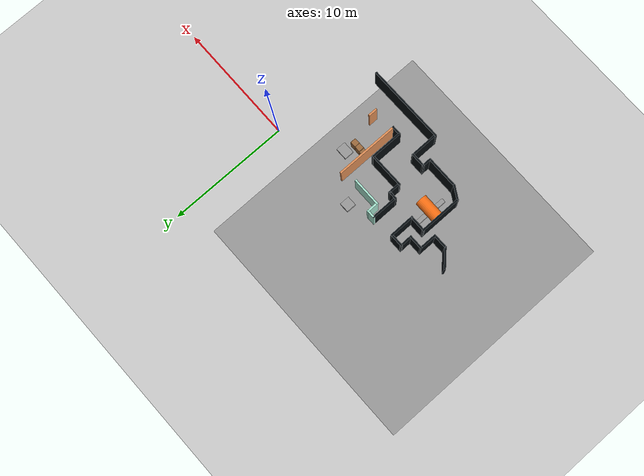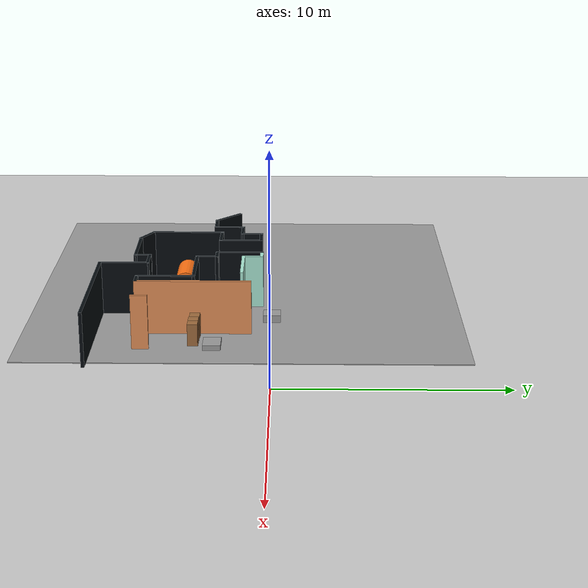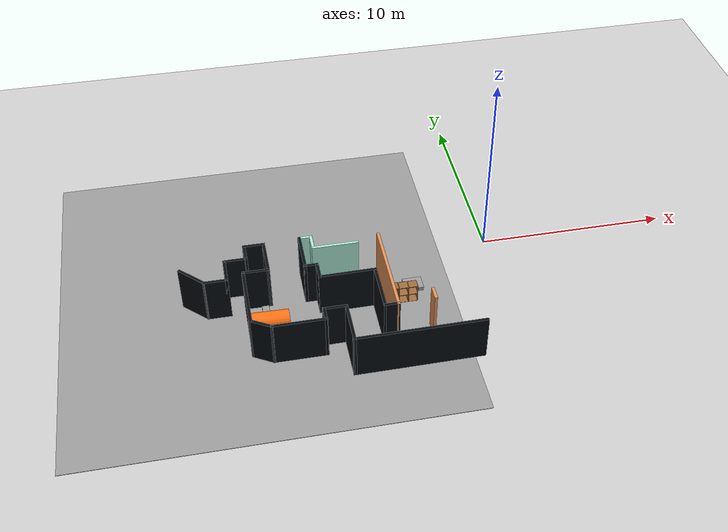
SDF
<sdf version="1.7">
 <world name="default">
  <model name="ground_plane">
   <static>1</static>
   <link name="link">
    <collision name="collision">
     <geometry><plane><normal>0 0 1</normal><size>100 100</size></plane></geometry>
     <surface><friction><ode><mu>100</mu><mu2>50</mu2></ode></friction></surface>
    </collision>
    <visual name="visual">
     <cast_shadows>0</cast_shadows>
     <geometry><plane><normal>0 0 1</normal><size>100 100</size></plane></geometry>
     <material>
      <script><uri>file://media/materials/scripts/gazebo.material</uri><name>Gazebo/Grey</name></script>
      <ambient>0.55 0.55 0.53 1</ambient>
      <diffuse>0.55 0.55 0.53 1</diffuse>
      <specular>0.08 0.08 0.08 1</specular>
      <emissive>0 0 0 1</emissive>
     </material>
    </visual>
   </link>
  </model>
  <model name="among_us_world">
   <pose>0.133216 -0.12311 0 0 -0 0</pose>
   <link name="Wall_145">
    <collision name="Wall_145_Collision">
     <geometry><box><size>5.25 0.15 2.5</size></box></geometry>
     <pose>0 0 1.25 0 -0 0</pose>
    </collision>
    <visual name="Wall_145_Visual">
     <pose>0 0 1.25 0 -0 0</pose>
     <geometry><box><size>5.25 0.15 2.5</size></box></geometry>
     <material>
      <script><uri>file://media/materials/scripts/gazebo.material</uri><name>Gazebo/Motorway</name></script>
      <ambient>0.88 0.56 0.34 1</ambient>
      <diffuse>0.88 0.56 0.34 1</diffuse>
      <specular>0.08 0.08 0.08 1</specular>
      <emissive>0 0 0 1</emissive>
     </material>
     <meta><layer>0</layer></meta>
    </visual>
    <pose>-6.21277 -3.45528 0 0 -0 1.5708</pose>
   </link>
   <link name="Wall_154">
    <collision name="Wall_154_Collision">
     <geometry><box><size>0.75 0.15 2.5</size></box></geometry>
     <pose>0 0 1.25 0 -0 0</pose>
    </collision>
    <visual name="Wall_154_Visual">
     <pose>0 0 1.25 0 -0 0</pose>
     <geometry><box><size>0.75 0.15 2.5</size></box></geometry>
     <material>
      <script><uri>file://media/materials/scripts/gazebo.material</uri><name>Gazebo/Motorway</name></script>
      <ambient>0.88 0.56 0.34 1</ambient>
      <diffuse>0.88 0.56 0.34 1</diffuse>
      <specular>0.08 0.08 0.08 1</specular>
      <emissive>0 0 0 1</emissive>
     </material>
     <meta><layer>0</layer></meta>
    </visual>
    <pose>-4.35577 -5.65528 0 0 -0 -1.5708</pose>
   </link>
   <link name="Wall_160">
    <collision name="Wall_160_Collision">
     <geometry><box><size>0.797757 0.15 2.5</size></box></geometry>
     <pose>0 0 1.25 0 -0 0</pose>
    </collision>
    <visual name="Wall_160_Visual">
     <pose>0 0 1.25 0 -0 0</pose>
     <geometry><box><size>0.797757 0.15 2.5</size></box></geometry>
     <material>
      <script><uri>file://media/materials/scripts/gazebo.material</uri><name>Gazebo/Motorway</name></script>
      <ambient>0.025 0.045 0.06 1</ambient>
      <diffuse>0.025 0.045 0.06 1</diffuse>
      <specular>0.08 0.08 0.08 1</specular>
      <emissive>0 0 0 1</emissive>
     </material>
     <meta><layer>0</layer></meta>
    </visual>
    <pose>-6.53682 -6.00509 0 0 -0 3.14101</pose>
   </link>
   <link name="Wall_161">
    <collision name="Wall_161_Collision">
     <geometry><box><size>2.70224 0.15 2.5</size></box></geometry>
     <pose>0 0 1.25 0 -0 0</pose>
    </collision>
    <visual name="Wall_161_Visual">
     <pose>0 0 1.25 0 -0 0</pose>
     <geometry><box><size>2.70224 0.15 2.5</size></box></geometry>
     <material>
      <script><uri>file://media/materials/scripts/gazebo.material</uri><name>Gazebo/Motorway</name></script>
      <ambient>0.025 0.045 0.06 1</ambient>
      <diffuse>0.025 0.045 0.06 1</diffuse>
      <specular>0.08 0.08 0.08 1</specular>
      <emissive>0 0 0 1</emissive>
     </material>
     <meta><layer>0</layer></meta>
    </visual>
    <pose>-6.87644 -4.72879 0 0 -0 1.5708</pose>
   </link>
   <link name="Wall_162">
    <collision name="Wall_162_Collision">
     <geometry><box><size>2.95229 0.15 2.5</size></box></geometry>
     <pose>0 0 1.25 0 -0 0</pose>
    </collision>
    <visual name="Wall_162_Visual">
     <pose>0 0 1.25 0 -0 0</pose>
     <geometry><box><size>2.95229 0.15 2.5</size></box></geometry>
     <material>
      <script><uri>file://media/materials/scripts/gazebo.material</uri><name>Gazebo/Motorway</name></script>
      <ambient>0.025 0.045 0.06 1</ambient>
      <diffuse>0.025 0.045 0.06 1</diffuse>
      <specular>0.08 0.08 0.08 1</specular>
      <emissive>0 0 0 1</emissive>
     </material>
     <meta><layer>0</layer></meta>
    </visual>
    <pose>-8.262 -3.46044 0 0 -0 -3.13604</pose>
   </link>
   <link name="Wall_163">
    <collision name="Wall_163_Collision">
     <geometry><box><size>1.04776 0.15 2.5</size></box></geometry>
     <pose>0 0 1.25 0 -0 0</pose>
    </collision>
    <visual name="Wall_163_Visual">
     <pose>0 0 1.25 0 -0 0</pose>
     <geometry><box><size>1.04776 0.15 2.5</size></box></geometry>
     <material>
      <script><uri>file://media/materials/scripts/gazebo.material</uri><name>Gazebo/Motorway</name></script>
      <ambient>0.025 0.045 0.06 1</ambient>
      <diffuse>0.025 0.045 0.06 1</diffuse>
      <specular>0.08 0.08 0.08 1</specular>
      <emissive>0 0 0 1</emissive>
     </material>
     <meta><layer>0</layer></meta>
    </visual>
    <pose>-9.66312 -3.00378 0 0 -0 1.5708</pose>
   </link>
   <link name="Wall_164">
    <collision name="Wall_164_Collision">
     <geometry><box><size>0.75 0.15 2.5</size></box></geometry>
     <pose>0 0 1.25 0 -0 0</pose>
    </collision>
    <visual name="Wall_164_Visual">
     <pose>0 0 1.25 0 -0 0</pose>
     <geometry><box><size>0.75 0.15 2.5</size></box></geometry>
     <material>
      <script><uri>file://media/materials/scripts/gazebo.material</uri><name>Gazebo/Motorway</name></script>
      <ambient>0.025 0.045 0.06 1</ambient>
      <diffuse>0.025 0.045 0.06 1</diffuse>
      <specular>0.08 0.08 0.08 1</specular>
      <emissive>0 0 0 1</emissive>
     </material>
     <meta><layer>0</layer></meta>
    </visual>
    <pose>-9.96312 -2.55491 0 0 -0 3.14159</pose>
   </link>
   <link name="Wall_165">
    <collision name="Wall_165_Collision">
     <geometry><box><size>2.25 0.15 2.5</size></box></geometry>
     <pose>0 0 1.25 0 -0 0</pose>
    </collision>
    <visual name="Wall_165_Visual">
     <pose>0 0 1.25 0 -0 0</pose>
     <geometry><box><size>2.25 0.15 2.5</size></box></geometry>
     <material>
      <script><uri>file://media/materials/scripts/gazebo.material</uri><name>Gazebo/Motorway</name></script>
      <ambient>0.025 0.045 0.06 1</ambient>
      <diffuse>0.025 0.045 0.06 1</diffuse>
      <specular>0.08 0.08 0.08 1</specular>
      <emissive>0 0 0 1</emissive>
     </material>
     <meta><layer>0</layer></meta>
    </visual>
    <pose>-10.2631 -1.50491 0 0 -0 1.5708</pose>
   </link>
   <link name="Wall_166">
    <collision name="Wall_166_Collision">
     <geometry><box><size>0.75 0.15 2.5</size></box></geometry>
     <pose>0 0 1.25 0 -0 0</pose>
    </collision>
    <visual name="Wall_166_Visual">
     <pose>0 0 1.25 0 -0 0</pose>
     <geometry><box><size>0.75 0.15 2.5</size></box></geometry>
     <material>
      <script><uri>file://media/materials/scripts/gazebo.material</uri><name>Gazebo/Motorway</name></script>
      <ambient>0.66 0.90 0.82 1</ambient>
      <diffuse>0.66 0.90 0.82 1</diffuse>
      <specular>0.08 0.08 0.08 1</specular>
      <emissive>0 0 0 1</emissive>
     </material>
     <meta><layer>0</layer></meta>
    </visual>
    <pose>-9.96312 -0.454906 0 0 -0 0</pose>
   </link>
   <link name="Wall_167">
    <collision name="Wall_167_Collision">
     <geometry><box><size>1 0.15 2.5</size></box></geometry>
     <pose>0 0 1.25 0 -0 0</pose>
    </collision>
    <visual name="Wall_167_Visual">
     <pose>0 0 1.25 0 -0 0</pose>
     <geometry><box><size>1 0.15 2.5</size></box></geometry>
     <material>
      <script><uri>file://media/materials/scripts/gazebo.material</uri><name>Gazebo/Motorway</name></script>
      <ambient>0.66 0.90 0.82 1</ambient>
      <diffuse>0.66 0.90 0.82 1</diffuse>
      <specular>0.08 0.08 0.08 1</specular>
      <emissive>0 0 0 1</emissive>
     </material>
     <meta><layer>0</layer></meta>
    </visual>
    <pose>-9.66312 -0.879906 0 0 -0 -1.5708</pose>
   </link>
   <link name="Wall_168">
    <collision name="Wall_168_Collision">
     <geometry><box><size>2.40666 0.15 2.5</size></box></geometry>
     <pose>0 0 1.25 0 -0 0</pose>
    </collision>
    <visual name="Wall_168_Visual">
     <pose>0 0 1.25 0 -0 0</pose>
     <geometry><box><size>2.40666 0.15 2.5</size></box></geometry>
     <material>
      <script><uri>file://media/materials/scripts/gazebo.material</uri><name>Gazebo/Motorway</name></script>
      <ambient>0.66 0.90 0.82 1</ambient>
      <diffuse>0.66 0.90 0.82 1</diffuse>
      <specular>0.08 0.08 0.08 1</specular>
      <emissive>0 0 0 1</emissive>
     </material>
     <meta><layer>0</layer></meta>
    </visual>
    <pose>-8.53479 -1.30491 0 0 -0 0</pose>
   </link>
   <link name="Wall_47">
    <collision name="Wall_47_Collision">
     <geometry><box><size>1.7065 0.15 2.5</size></box></geometry>
     <pose>0 0 1.25 0 -0 0</pose>
    </collision>
    <visual name="Wall_47_Visual">
     <pose>0 0 1.25 0 -0 0</pose>
     <geometry><box><size>1.7065 0.15 2.5</size></box></geometry>
     <material>
      <script><uri>file://media/materials/scripts/gazebo.material</uri><name>Gazebo/Motorway</name></script>
      <ambient>0.025 0.045 0.06 1</ambient>
      <diffuse>0.025 0.045 0.06 1</diffuse>
      <specular>0.08 0.08 0.08 1</specular>
      <emissive>0 0 0 1</emissive>
     </material>
     <meta><layer>0</layer></meta>
    </visual>
    <pose>-15.8858 -2.28678 0 0 -0 -0.771315</pose>
   </link>
   <link name="Wall_48">
    <collision name="Wall_48_Collision">
     <geometry><box><size>1.266 0.15 2.5</size></box></geometry>
     <pose>0 0 1.25 0 -0 0</pose>
    </collision>
    <visual name="Wall_48_Visual">
     <pose>0 0 1.25 0 -0 0</pose>
     <geometry><box><size>1.266 0.15 2.5</size></box></geometry>
     <material>
      <script><uri>file://media/materials/scripts/gazebo.material</uri><name>Gazebo/Motorway</name></script>
      <ambient>0.025 0.045 0.06 1</ambient>
      <diffuse>0.025 0.045 0.06 1</diffuse>
      <specular>0.08 0.08 0.08 1</specular>
      <emissive>0 0 0 1</emissive>
     </material>
     <meta><layer>0</layer></meta>
    </visual>
    <pose>-14.7698 -2.82928 0 0 -0 0</pose>
   </link>
   <link name="Wall_49">
    <collision name="Wall_49_Collision">
     <geometry><box><size>1.5 0.15 2.5</size></box></geometry>
     <pose>0 0 1.25 0 -0 0</pose>
    </collision>
    <visual name="Wall_49_Visual">
     <pose>0 0 1.25 0 -0 0</pose>
     <geometry><box><size>1.5 0.15 2.5</size></box></geometry>
     <material>
      <script><uri>file://media/materials/scripts/gazebo.material</uri><name>Gazebo/Motorway</name></script>
      <ambient>0.025 0.045 0.06 1</ambient>
      <diffuse>0.025 0.045 0.06 1</diffuse>
      <specular>0.08 0.08 0.08 1</specular>
      <emissive>0 0 0 1</emissive>
     </material>
     <meta><layer>0</layer></meta>
    </visual>
    <pose>-14.2118 -2.15428 0 0 -0 1.5708</pose>
   </link>
   <link name="Wall_50">
    <collision name="Wall_50_Collision">
     <geometry><box><size>1.25 0.15 2.5</size></box></geometry>
     <pose>0 0 1.25 0 -0 0</pose>
    </collision>
    <visual name="Wall_50_Visual">
     <pose>0 0 1.25 0 -0 0</pose>
     <geometry><box><size>1.25 0.15 2.5</size></box></geometry>
     <material>
      <script><uri>file://media/materials/scripts/gazebo.material</uri><name>Gazebo/Motorway</name></script>
      <ambient>0.025 0.045 0.06 1</ambient>
      <diffuse>0.025 0.045 0.06 1</diffuse>
      <specular>0.08 0.08 0.08 1</specular>
      <emissive>0 0 0 1</emissive>
     </material>
     <meta><layer>0</layer></meta>
    </visual>
    <pose>-13.6618 -1.47928 0 0 -0 0</pose>
   </link>
   <link name="Wall_51">
    <collision name="Wall_51_Collision">
     <geometry><box><size>1.07621 0.15 2.5</size></box></geometry>
     <pose>0 0 1.25 0 -0 0</pose>
    </collision>
    <visual name="Wall_51_Visual">
     <pose>0 0 1.25 0 -0 0</pose>
     <geometry><box><size>1.07621 0.15 2.5</size></box></geometry>
     <material>
      <script><uri>file://media/materials/scripts/gazebo.material</uri><name>Gazebo/Motorway</name></script>
      <ambient>0.025 0.045 0.06 1</ambient>
      <diffuse>0.025 0.045 0.06 1</diffuse>
      <specular>0.08 0.08 0.08 1</specular>
      <emissive>0 0 0 1</emissive>
     </material>
     <meta><layer>0</layer></meta>
    </visual>
    <pose>-13.1188 -1.01578 0 0 -0 1.5859</pose>
   </link>
   <link name="Wall_52">
    <collision name="Wall_52_Collision">
     <geometry><box><size>1.1411 0.15 2.5</size></box></geometry>
     <pose>0 0 1.25 0 -0 0</pose>
    </collision>
    <visual name="Wall_52_Visual">
     <pose>0 0 1.25 0 -0 0</pose>
     <geometry><box><size>1.1411 0.15 2.5</size></box></geometry>
     <material>
      <script><uri>file://media/materials/scripts/gazebo.material</uri><name>Gazebo/Motorway</name></script>
      <ambient>0.025 0.045 0.06 1</ambient>
      <diffuse>0.025 0.045 0.06 1</diffuse>
      <specular>0.08 0.08 0.08 1</specular>
      <emissive>0 0 0 1</emissive>
     </material>
     <meta><layer>0</layer></meta>
    </visual>
    <pose>-12.6302 -0.553561 0 0 -0 -0.00258</pose>
   </link>
   <link name="Wall_53">
    <collision name="Wall_53_Collision">
     <geometry><box><size>2.08956 0.15 2.5</size></box></geometry>
     <pose>0 0 1.25 0 -0 0</pose>
    </collision>
    <visual name="Wall_53_Visual">
     <pose>0 0 1.25 0 -0 0</pose>
     <geometry><box><size>2.08956 0.15 2.5</size></box></geometry>
     <material>
      <script><uri>file://media/materials/scripts/gazebo.material</uri><name>Gazebo/Motorway</name></script>
      <ambient>0.025 0.045 0.06 1</ambient>
      <diffuse>0.025 0.045 0.06 1</diffuse>
      <specular>0.08 0.08 0.08 1</specular>
      <emissive>0 0 0 1</emissive>
     </material>
     <meta><layer>0</layer></meta>
    </visual>
    <pose>-12.1122 -1.5246 0 0 -0 -1.56365</pose>
   </link>
   <link name="Wall_54">
    <collision name="Wall_54_Collision">
     <geometry><box><size>1.3912 0.15 2.5</size></box></geometry>
     <pose>0 0 1.25 0 -0 0</pose>
    </collision>
    <visual name="Wall_54_Visual">
     <pose>0 0 1.25 0 -0 0</pose>
     <geometry><box><size>1.3912 0.15 2.5</size></box></geometry>
     <material>
      <script><uri>file://media/materials/scripts/gazebo.material</uri><name>Gazebo/Motorway</name></script>
      <ambient>0.025 0.045 0.06 1</ambient>
      <diffuse>0.025 0.045 0.06 1</diffuse>
      <specular>0.08 0.08 0.08 1</specular>
      <emissive>0 0 0 1</emissive>
     </material>
     <meta><layer>0</layer></meta>
    </visual>
    <pose>-12.7414 -2.48657 0 0 -0 3.12906</pose>
   </link>
   <link name="Wall_55">
    <collision name="Wall_55_Collision">
     <geometry><box><size>3.5 0.15 2.5</size></box></geometry>
     <pose>0 0 1.25 0 -0 0</pose>
    </collision>
    <visual name="Wall_55_Visual">
     <pose>0 0 1.25 0 -0 0</pose>
     <geometry><box><size>3.5 0.15 2.5</size></box></geometry>
     <material>
      <script><uri>file://media/materials/scripts/gazebo.material</uri><name>Gazebo/Motorway</name></script>
      <ambient>0.025 0.045 0.06 1</ambient>
      <diffuse>0.025 0.045 0.06 1</diffuse>
      <specular>0.08 0.08 0.08 1</specular>
      <emissive>0 0 0 1</emissive>
     </material>
     <meta><layer>0</layer></meta>
    </visual>
    <pose>-13.3619 -4.15379 0 0 -0 -1.5708</pose>
   </link>
   <link name="Wall_56">
    <collision name="Wall_56_Collision">
     <geometry><box><size>1.25 0.15 2.5</size></box></geometry>
     <pose>0 0 1.25 0 -0 0</pose>
    </collision>
    <visual name="Wall_56_Visual">
     <pose>0 0 1.25 0 -0 0</pose>
     <geometry><box><size>1.25 0.15 2.5</size></box></geometry>
     <material>
      <script><uri>file://media/materials/scripts/gazebo.material</uri><name>Gazebo/Motorway</name></script>
      <ambient>0.025 0.045 0.06 1</ambient>
      <diffuse>0.025 0.045 0.06 1</diffuse>
      <specular>0.08 0.08 0.08 1</specular>
      <emissive>0 0 0 1</emissive>
     </material>
     <meta><layer>0</layer></meta>
    </visual>
    <pose>-12.8856 -6.10379 0 0 -0 -0.523599</pose>
   </link>
   <link name="Wall_57">
    <collision name="Wall_57_Collision">
     <geometry><box><size>2.75 0.15 2.5</size></box></geometry>
     <pose>0 0 1.25 0 -0 0</pose>
    </collision>
    <visual name="Wall_57_Visual">
     <pose>0 0 1.25 0 -0 0</pose>
     <geometry><box><size>2.75 0.15 2.5</size></box></geometry>
     <material>
      <script><uri>file://media/materials/scripts/gazebo.material</uri><name>Gazebo/Motorway</name></script>
      <ambient>0.025 0.045 0.06 1</ambient>
      <diffuse>0.025 0.045 0.06 1</diffuse>
      <specular>0.08 0.08 0.08 1</specular>
      <emissive>0 0 0 1</emissive>
     </material>
     <meta><layer>0</layer></meta>
    </visual>
    <pose>-11.1093 -6.37879 0 0 -0 0</pose>
   </link>
   <link name="Wall_58">
    <collision name="Wall_58_Collision">
     <geometry><box><size>0.828826 0.15 2.5</size></box></geometry>
     <pose>0 0 1.25 0 -0 0</pose>
    </collision>
    <visual name="Wall_58_Visual">
     <pose>0 0 1.25 0 -0 0</pose>
     <geometry><box><size>0.828826 0.15 2.5</size></box></geometry>
     <material>
      <script><uri>file://media/materials/scripts/gazebo.material</uri><name>Gazebo/Motorway</name></script>
      <ambient>0.025 0.045 0.06 1</ambient>
      <diffuse>0.025 0.045 0.06 1</diffuse>
      <specular>0.08 0.08 0.08 1</specular>
      <emissive>0 0 0 1</emissive>
     </material>
     <meta><layer>0</layer></meta>
    </visual>
    <pose>-9.81221 -6.03984 0 0 -0 1.57942</pose>
   </link>
   <link name="Wall_59">
    <collision name="Wall_59_Collision">
     <geometry><box><size>1.25 0.15 2.5</size></box></geometry>
     <pose>0 0 1.25 0 -0 0</pose>
    </collision>
    <visual name="Wall_59_Visual">
     <pose>0 0 1.25 0 -0 0</pose>
     <geometry><box><size>1.25 0.15 2.5</size></box></geometry>
     <material>
      <script><uri>file://media/materials/scripts/gazebo.material</uri><name>Gazebo/Motorway</name></script>
      <ambient>0.025 0.045 0.06 1</ambient>
      <diffuse>0.025 0.045 0.06 1</diffuse>
      <specular>0.08 0.08 0.08 1</specular>
      <emissive>0 0 0 1</emissive>
     </material>
     <meta><layer>0</layer></meta>
    </visual>
    <pose>-9.27098 -5.70088 0 0 -0 0</pose>
   </link>
   <link name="Wall_60">
    <collision name="Wall_60_Collision">
     <geometry><box><size>2.3556 0.15 2.5</size></box></geometry>
     <pose>0 0 1.25 0 -0 0</pose>
    </collision>
    <visual name="Wall_60_Visual">
     <pose>0 0 1.25 0 -0 0</pose>
     <geometry><box><size>2.3556 0.15 2.5</size></box></geometry>
     <material>
      <script><uri>file://media/materials/scripts/gazebo.material</uri><name>Gazebo/Motorway</name></script>
      <ambient>0.025 0.045 0.06 1</ambient>
      <diffuse>0.025 0.045 0.06 1</diffuse>
      <specular>0.08 0.08 0.08 1</specular>
      <emissive>0 0 0 1</emissive>
     </material>
     <meta><layer>0</layer></meta>
    </visual>
    <pose>-8.71756 -6.80367 0 0 -0 -1.56769</pose>
   </link>
   <link name="Wall_61">
    <collision name="Wall_61_Collision">
     <geometry><box><size>6.57551 0.15 2.5</size></box></geometry>
     <pose>0 0 1.25 0 -0 0</pose>
    </collision>
    <visual name="Wall_61_Visual">
     <pose>0 0 1.25 0 -0 0</pose>
     <geometry><box><size>6.57551 0.15 2.5</size></box></geometry>
     <material>
      <script><uri>file://media/materials/scripts/gazebo.material</uri><name>Gazebo/Motorway</name></script>
      <ambient>0.025 0.045 0.06 1</ambient>
      <diffuse>0.025 0.045 0.06 1</diffuse>
      <specular>0.08 0.08 0.08 1</specular>
      <emissive>0 0 0 1</emissive>
     </material>
     <meta><layer>0</layer></meta>
    </visual>
    <pose>-5.51319 -7.89091 0 0 -0 0.004842</pose>
   </link>
   <static>1</static>
  </model>
  <model name="cabinet_clone">
   <static>1</static>
   <link name="cabinet_bottom_plate">
    <inertial>
     <pose>0 0 -1 0 -0 0</pose>
     <inertia><ixx>2.05</ixx><ixy>0</ixy><ixz>0</ixz><iyy>2.05</iyy><iyz>0</iyz><izz>2.05</izz></inertia>
     <mass>25</mass>
    </inertial>
    <collision name="cabinet_bottom_plate_geom">
     <pose>0 0 0.01 0 -0 0</pose>
     <geometry><box><size>0.45 0.45 0.02</size></box></geometry>
    </collision>
    <visual name="cabinet_bottom_plate_geom_visual">
     <pose>0 0 0.01 0 -0 0</pose>
     <geometry><box><size>0.45 0.45 0.02</size></box></geometry>
     <material>
      <script><uri>file://media/materials/scripts/gazebo.material</uri><name>Gazebo/Grey</name></script>
      <ambient>0.62 0.42 0.24 1</ambient>
      <diffuse>0.62 0.42 0.24 1</diffuse>
      <specular>0.08 0.08 0.08 1</specular>
      <emissive>0 0 0 1</emissive>
     </material>
    </visual>
    <collision name="cabinet_bottom_plate_geom_cabinet_back_plate">
     <pose>0.235 0 0.51 0 -0 0</pose>
     <geometry><box><size>0.02 0.45 1.02</size></box></geometry>
    </collision>
    <visual name="cabinet_bottom_plate_geom_cabinet_back_plate_visual">
     <pose>0.235 0 0.51 0 -0 0</pose>
     <geometry><box><size>0.02 0.45 1.02</size></box></geometry>
     <material>
      <script><uri>file://media/materials/scripts/gazebo.material</uri><name>Gazebo/Grey</name></script>
      <ambient>0.62 0.42 0.24 1</ambient>
      <diffuse>0.62 0.42 0.24 1</diffuse>
      <specular>0.08 0.08 0.08 1</specular>
      <emissive>0 0 0 1</emissive>
     </material>
    </visual>
    <collision name="cabinet_bottom_plate_geom_cabinet_left_plate">
     <pose>0 0.235 0.51 0 -0 0</pose>
     <geometry><box><size>0.45 0.02 1.02</size></box></geometry>
    </collision>
    <visual name="cabinet_bottom_plate_geom_cabinet_left_plate_visual">
     <pose>0 0.235 0.51 0 -0 0</pose>
     <geometry><box><size>0.45 0.02 1.02</size></box></geometry>
     <material>
      <script><uri>file://media/materials/scripts/gazebo.material</uri><name>Gazebo/Grey</name></script>
      <ambient>0.62 0.42 0.24 1</ambient>
      <diffuse>0.62 0.42 0.24 1</diffuse>
      <specular>0.08 0.08 0.08 1</specular>
      <emissive>0 0 0 1</emissive>
     </material>
    </visual>
    <collision name="cabinet_bottom_plate_geom_cabinet_middle_plate">
     <pose>0 0 0.51 0 -0 0</pose>
     <geometry><box><size>0.45 0.45 0.02</size></box></geometry>
    </collision>
    <visual name="cabinet_bottom_plate_geom_cabinet_middle_plate_visual">
     <pose>0 0 0.51 0 -0 0</pose>
     <geometry><box><size>0.45 0.45 0.02</size></box></geometry>
     <material>
      <script><uri>file://media/materials/scripts/gazebo.material</uri><name>Gazebo/Grey</name></script>
      <ambient>0.62 0.42 0.24 1</ambient>
      <diffuse>0.62 0.42 0.24 1</diffuse>
      <specular>0.08 0.08 0.08 1</specular>
      <emissive>0 0 0 1</emissive>
     </material>
    </visual>
    <collision name="cabinet_bottom_plate_geom_cabinet_right_plate">
     <pose>0 -0.235 0.51 0 -0 0</pose>
     <geometry><box><size>0.45 0.02 1.02</size></box></geometry>
    </collision>
    <visual name="cabinet_bottom_plate_geom_cabinet_right_plate_visual">
     <pose>0 -0.235 0.51 0 -0 0</pose>
     <geometry><box><size>0.45 0.02 1.02</size></box></geometry>
     <material>
      <script><uri>file://media/materials/scripts/gazebo.material</uri><name>Gazebo/Grey</name></script>
      <ambient>0.62 0.42 0.24 1</ambient>
      <diffuse>0.62 0.42 0.24 1</diffuse>
      <specular>0.08 0.08 0.08 1</specular>
      <emissive>0 0 0 1</emissive>
     </material>
    </visual>
    <collision name="cabinet_bottom_plate_geom_cabinet_top_plate">
     <pose>0 0 1.01 0 -0 0</pose>
     <geometry><box><size>0.45 0.45 0.02</size></box></geometry>
    </collision>
    <visual name="cabinet_bottom_plate_geom_cabinet_top_plate_visual">
     <pose>0 0 1.01 0 -0 0</pose>
     <geometry><box><size>0.45 0.45 0.02</size></box></geometry>
     <material>
      <script><uri>file://media/materials/scripts/gazebo.material</uri><name>Gazebo/Grey</name></script>
      <ambient>0.62 0.42 0.24 1</ambient>
      <diffuse>0.62 0.42 0.24 1</diffuse>
      <specular>0.08 0.08 0.08 1</specular>
      <emissive>0 0 0 1</emissive>
     </material>
    </visual>
   </link>
   <pose>-5.25916 -3.50994 0 0 -0 1.57</pose>
  </model>
  <model name="cabinet_clone_0">
   <static>1</static>
   <link name="cabinet_bottom_plate">
    <inertial>
     <pose>0 0 -1 0 -0 0</pose>
     <inertia><ixx>2.05</ixx><ixy>0</ixy><ixz>0</ixz><iyy>2.05</iyy><iyz>0</iyz><izz>2.05</izz></inertia>
     <mass>25</mass>
    </inertial>
    <collision name="cabinet_bottom_plate_geom">
     <pose>0 0 0.01 0 -0 0</pose>
     <geometry><box><size>0.45 0.45 0.02</size></box></geometry>
    </collision>
    <visual name="cabinet_bottom_plate_geom_visual">
     <pose>0 0 0.01 0 -0 0</pose>
     <geometry><box><size>0.45 0.45 0.02</size></box></geometry>
     <material>
      <script><uri>file://media/materials/scripts/gazebo.material</uri><name>Gazebo/Grey</name></script>
      <ambient>0.62 0.42 0.24 1</ambient>
      <diffuse>0.62 0.42 0.24 1</diffuse>
      <specular>0.08 0.08 0.08 1</specular>
      <emissive>0 0 0 1</emissive>
     </material>
    </visual>
    <collision name="cabinet_bottom_plate_geom_cabinet_back_plate">
     <pose>0.235 0 0.51 0 -0 0</pose>
     <geometry><box><size>0.02 0.45 1.02</size></box></geometry>
    </collision>
    <visual name="cabinet_bottom_plate_geom_cabinet_back_plate_visual">
     <pose>0.235 0 0.51 0 -0 0</pose>
     <geometry><box><size>0.02 0.45 1.02</size></box></geometry>
     <material>
      <script><uri>file://media/materials/scripts/gazebo.material</uri><name>Gazebo/Grey</name></script>
      <ambient>0.62 0.42 0.24 1</ambient>
      <diffuse>0.62 0.42 0.24 1</diffuse>
      <specular>0.08 0.08 0.08 1</specular>
      <emissive>0 0 0 1</emissive>
     </material>
    </visual>
    <collision name="cabinet_bottom_plate_geom_cabinet_left_plate">
     <pose>0 0.235 0.51 0 -0 0</pose>
     <geometry><box><size>0.45 0.02 1.02</size></box></geometry>
    </collision>
    <visual name="cabinet_bottom_plate_geom_cabinet_left_plate_visual">
     <pose>0 0.235 0.51 0 -0 0</pose>
     <geometry><box><size>0.45 0.02 1.02</size></box></geometry>
     <material>
      <script><uri>file://media/materials/scripts/gazebo.material</uri><name>Gazebo/Grey</name></script>
      <ambient>0.62 0.42 0.24 1</ambient>
      <diffuse>0.62 0.42 0.24 1</diffuse>
      <specular>0.08 0.08 0.08 1</specular>
      <emissive>0 0 0 1</emissive>
     </material>
    </visual>
    <collision name="cabinet_bottom_plate_geom_cabinet_middle_plate">
     <pose>0 0 0.51 0 -0 0</pose>
     <geometry><box><size>0.45 0.45 0.02</size></box></geometry>
    </collision>
    <visual name="cabinet_bottom_plate_geom_cabinet_middle_plate_visual">
     <pose>0 0 0.51 0 -0 0</pose>
     <geometry><box><size>0.45 0.45 0.02</size></box></geometry>
     <material>
      <script><uri>file://media/materials/scripts/gazebo.material</uri><name>Gazebo/Grey</name></script>
      <ambient>0.62 0.42 0.24 1</ambient>
      <diffuse>0.62 0.42 0.24 1</diffuse>
      <specular>0.08 0.08 0.08 1</specular>
      <emissive>0 0 0 1</emissive>
     </material>
    </visual>
    <collision name="cabinet_bottom_plate_geom_cabinet_right_plate">
     <pose>0 -0.235 0.51 0 -0 0</pose>
     <geometry><box><size>0.45 0.02 1.02</size></box></geometry>
    </collision>
    <visual name="cabinet_bottom_plate_geom_cabinet_right_plate_visual">
     <pose>0 -0.235 0.51 0 -0 0</pose>
     <geometry><box><size>0.45 0.02 1.02</size></box></geometry>
     <material>
      <script><uri>file://media/materials/scripts/gazebo.material</uri><name>Gazebo/Grey</name></script>
      <ambient>0.62 0.42 0.24 1</ambient>
      <diffuse>0.62 0.42 0.24 1</diffuse>
      <specular>0.08 0.08 0.08 1</specular>
      <emissive>0 0 0 1</emissive>
     </material>
    </visual>
    <collision name="cabinet_bottom_plate_geom_cabinet_top_plate">
     <pose>0 0 1.01 0 -0 0</pose>
     <geometry><box><size>0.45 0.45 0.02</size></box></geometry>
    </collision>
    <visual name="cabinet_bottom_plate_geom_cabinet_top_plate_visual">
     <pose>0 0 1.01 0 -0 0</pose>
     <geometry><box><size>0.45 0.45 0.02</size></box></geometry>
     <material>
      <script><uri>file://media/materials/scripts/gazebo.material</uri><name>Gazebo/Grey</name></script>
      <ambient>0.62 0.42 0.24 1</ambient>
      <diffuse>0.62 0.42 0.24 1</diffuse>
      <specular>0.08 0.08 0.08 1</specular>
      <emissive>0 0 0 1</emissive>
     </material>
    </visual>
   </link>
   <pose>-4.77375 -3.5118 0 0 -0 1.57</pose>
  </model>
  <model name="drc_practice_white_jersey_barrier_clone">
   <static>1</static>
   <link name="link">
    <visual name="visual">
     <geometry><box><size>1.2 0.35 0.8</size></box></geometry>
     <material>
      <script><uri>file://media/materials/scripts/gazebo.material</uri><name>Gazebo/Grey</name></script>
      <ambient>0.025 0.045 0.06 1</ambient>
      <diffuse>0.025 0.045 0.06 1</diffuse>
      <specular>0.08 0.08 0.08 1</specular>
      <emissive>0 0 0 1</emissive>
     </material>
    </visual>
    <collision name="collision"><geometry><box><size>1.2 0.35 0.8</size></box></geometry></collision>
   </link>
   <pose>-12.3343 -4.9835 0 0 -0 1.56089</pose>
  </model>
  <model name="mars_rover">
   <static>1</static>
   <link name="link">
    <collision name="solar_panel_collision">
     <pose>0 -0.06945 0.47293 0 -0 0</pose>
     <geometry><box><size>0.87974 0.8821 0.02602</size></box></geometry>
    </collision>
    <collision name="chassis_collision">
     <pose>0 -0.05 0.31475 0 -0 0</pose>
     <geometry><box><size>0.49522 0.67401 0.28915</size></box></geometry>
    </collision>
    <collision name="rear_left_bumper_collision">
     <pose>0.30107 0.3835 0.38976 0 -0 0</pose>
     <geometry><box><size>0.04442 0.38897 0.07918</size></box></geometry>
    </collision>
    <collision name="rear_right_bumper_collision">
     <pose>-0.30107 0.3835 0.38976 0 -0 0</pose>
     <geometry><box><size>0.04442 0.38897 0.07918</size></box></geometry>
    </collision>
    <collision name="rear_bumper_collision">
     <pose>0 0.59414 0.38976 0 -0 0</pose>
     <geometry><box><size>0.56656 0.04442 0.07918</size></box></geometry>
    </collision>
    <collision name="bin_back_panel_collision">
     <pose>0 0.47 0.32114 0.69137 -0 0</pose>
     <geometry><box><size>0.43774 0.212366 0.05173</size></box></geometry>
    </collision>
    <collision name="bin_left_panel_collision1">
     <pose>0.22615 0.32897 0.33193 0 -0 0</pose>
     <geometry><box><size>0.01116 0.19338 0.16304</size></box></geometry>
    </collision>
    <collision name="bin_left_panel_collision2">
     <pose>0.22615 0.471 0.39308 0 -0 0</pose>
     <geometry><box><size>0.01116 0.15 0.04</size></box></geometry>
    </collision>
    <collision name="bin_left_panel_collision3">
     <pose>0.22615 0.45 0.35308 0 -0 0</pose>
     <geometry><box><size>0.01116 0.15 0.04</size></box></geometry>
    </collision>
    <collision name="bin_left_panel_collision4">
     <pose>0.22615 0.39308 0.31308 0 -0 0</pose>
     <geometry><box><size>0.01116 0.15 0.04</size></box></geometry>
    </collision>
    <collision name="bin_right_panel_collision1">
     <pose>-0.22615 0.32897 0.33193 0 -0 0</pose>
     <geometry><box><size>0.01116 0.19338 0.16304</size></box></geometry>
    </collision>
    <collision name="bin_right_panel_collision2">
     <pose>-0.22615 0.471 0.39308 0 -0 0</pose>
     <geometry><box><size>0.01116 0.15 0.04</size></box></geometry>
    </collision>
    <collision name="bin_right_panel_collision3">
     <pose>-0.22615 0.45 0.35308 0 -0 0</pose>
     <geometry><box><size>0.01116 0.15 0.04</size></box></geometry>
    </collision>
    <collision name="bin_right_panel_collision4">
     <pose>-0.22615 0.39308 0.31308 0 -0 0</pose>
     <geometry><box><size>0.01116 0.15 0.04</size></box></geometry>
    </collision>
    <collision name="bin_front_panel_collision">
     <pose>0 0.30047 0.32114 2.26207 -0 0</pose>
     <geometry><box><size>0.43774 0.212366 0.05173</size></box></geometry>
    </collision>
    <collision name="front_left_wheel_collision">
     <pose>0.31103 -0.32115 0.1358 1.5707 0 1.5707</pose>
     <geometry><cylinder><radius>0.1358</radius><length>0.1641</length></cylinder></geometry>
    </collision>
    <collision name="front_right_wheel_collision">
     <pose>-0.31103 -0.32115 0.1358 1.5707 0 1.5707</pose>
     <geometry><cylinder><radius>0.1358</radius><length>0.1641</length></cylinder></geometry>
    </collision>
    <collision name="rear_left_wheel_collision">
     <pose>0.31103 0.28049 0.1358 1.5707 0 1.5707</pose>
     <geometry><cylinder><radius>0.1358</radius><length>0.1641</length></cylinder></geometry>
    </collision>
    <collision name="rear_right_wheel_collision">
     <pose>-0.31103 0.28049 0.1358 1.5707 0 1.5707</pose>
     <geometry><cylinder><radius>0.1358</radius><length>0.1641</length></cylinder></geometry>
    </collision>
    <visual name="visual">
     <geometry><box><size>1.0 0.8 0.45</size></box></geometry>
     <material>
      <script><uri>file://media/materials/scripts/gazebo.material</uri><name>Gazebo/Grey</name></script>
      <ambient>0.42 0.43 0.42 1</ambient>
      <diffuse>0.42 0.43 0.42 1</diffuse>
      <specular>0.08 0.08 0.08 1</specular>
      <emissive>0 0 0 1</emissive>
     </material>
    </visual>
   </link>
   <pose>-4.55317 -2.65606 0 0 -0 0</pose>
  </model>
  <model name="cafe_table">
   <static>1</static>
   <link name="link">
    <collision name="surface">
     <pose>0 0 0.755 0 -0 0</pose>
     <geometry><box><size>0.913 0.913 0.04</size></box></geometry>
    </collision>
    <collision name="column">
     <pose>0 0 0.37 0 -0 0</pose>
     <geometry><box><size>0.042 0.042 0.74</size></box></geometry>
    </collision>
    <collision name="base">
     <pose>0 0 0.02 0 -0 0</pose>
     <geometry><box><size>0.56 0.56 0.04</size></box></geometry>
    </collision>
    <visual name="visual">
     <geometry><box><size>0.8 0.8 0.7</size></box></geometry>
     <material>
      <script><uri>file://media/materials/scripts/gazebo.material</uri><name>Gazebo/Grey</name></script>
      <ambient>0.42 0.43 0.42 1</ambient>
      <diffuse>0.42 0.43 0.42 1</diffuse>
      <specular>0.08 0.08 0.08 1</specular>
      <emissive>0 0 0 1</emissive>
     </material>
    </visual>
   </link>
   <pose>-7.80913 -0.069693 0 0 -0 0</pose>
  </model>
  <model name="drc_practice_white_jersey_barrier_clone_clone_1">
   <static>1</static>
   <link name="link">
    <visual name="visual">
     <geometry><box><size>1.2 0.35 0.8</size></box></geometry>
     <material>
      <script><uri>file://media/materials/scripts/gazebo.material</uri><name>Gazebo/Grey</name></script>
      <ambient>0.025 0.045 0.06 1</ambient>
      <diffuse>0.025 0.045 0.06 1</diffuse>
      <specular>0.08 0.08 0.08 1</specular>
      <emissive>0 0 0 1</emissive>
     </material>
    </visual>
    <collision name="collision"><geometry><box><size>1.2 0.35 0.8</size></box></geometry></collision>
   </link>
   <pose>-12.2912 -3.62382 0 0 -0 1.57745</pose>
  </model>
  <model name="cabinet_clone_0_clone">
   <static>1</static>
   <link name="cabinet_bottom_plate">
    <inertial>
     <pose>0 0 -1 0 -0 0</pose>
     <inertia><ixx>2.05</ixx><ixy>0</ixy><ixz>0</ixz><iyy>2.05</iyy><iyz>0</iyz><izz>2.05</izz></inertia>
     <mass>25</mass>
    </inertial>
    <collision name="cabinet_bottom_plate_geom">
     <pose>0 0 0.01 0 -0 0</pose>
     <geometry><box><size>0.45 0.45 0.02</size></box></geometry>
    </collision>
    <visual name="cabinet_bottom_plate_geom_visual">
     <pose>0 0 0.01 0 -0 0</pose>
     <geometry><box><size>0.45 0.45 0.02</size></box></geometry>
     <material>
      <script><uri>file://media/materials/scripts/gazebo.material</uri><name>Gazebo/Grey</name></script>
      <ambient>0.62 0.42 0.24 1</ambient>
      <diffuse>0.62 0.42 0.24 1</diffuse>
      <specular>0.08 0.08 0.08 1</specular>
      <emissive>0 0 0 1</emissive>
     </material>
    </visual>
    <collision name="cabinet_bottom_plate_geom_cabinet_back_plate">
     <pose>0.235 0 0.51 0 -0 0</pose>
     <geometry><box><size>0.02 0.45 1.02</size></box></geometry>
    </collision>
    <visual name="cabinet_bottom_plate_geom_cabinet_back_plate_visual">
     <pose>0.235 0 0.51 0 -0 0</pose>
     <geometry><box><size>0.02 0.45 1.02</size></box></geometry>
     <material>
      <script><uri>file://media/materials/scripts/gazebo.material</uri><name>Gazebo/Grey</name></script>
      <ambient>0.62 0.42 0.24 1</ambient>
      <diffuse>0.62 0.42 0.24 1</diffuse>
      <specular>0.08 0.08 0.08 1</specular>
      <emissive>0 0 0 1</emissive>
     </material>
    </visual>
    <collision name="cabinet_bottom_plate_geom_cabinet_left_plate">
     <pose>0 0.235 0.51 0 -0 0</pose>
     <geometry><box><size>0.45 0.02 1.02</size></box></geometry>
    </collision>
    <visual name="cabinet_bottom_plate_geom_cabinet_left_plate_visual">
     <pose>0 0.235 0.51 0 -0 0</pose>
     <geometry><box><size>0.45 0.02 1.02</size></box></geometry>
     <material>
      <script><uri>file://media/materials/scripts/gazebo.material</uri><name>Gazebo/Grey</name></script>
      <ambient>0.62 0.42 0.24 1</ambient>
      <diffuse>0.62 0.42 0.24 1</diffuse>
      <specular>0.08 0.08 0.08 1</specular>
      <emissive>0 0 0 1</emissive>
     </material>
    </visual>
    <collision name="cabinet_bottom_plate_geom_cabinet_middle_plate">
     <pose>0 0 0.51 0 -0 0</pose>
     <geometry><box><size>0.45 0.45 0.02</size></box></geometry>
    </collision>
    <visual name="cabinet_bottom_plate_geom_cabinet_middle_plate_visual">
     <pose>0 0 0.51 0 -0 0</pose>
     <geometry><box><size>0.45 0.45 0.02</size></box></geometry>
     <material>
      <script><uri>file://media/materials/scripts/gazebo.material</uri><name>Gazebo/Grey</name></script>
      <ambient>0.62 0.42 0.24 1</ambient>
      <diffuse>0.62 0.42 0.24 1</diffuse>
      <specular>0.08 0.08 0.08 1</specular>
      <emissive>0 0 0 1</emissive>
     </material>
    </visual>
    <collision name="cabinet_bottom_plate_geom_cabinet_right_plate">
     <pose>0 -0.235 0.51 0 -0 0</pose>
     <geometry><box><size>0.45 0.02 1.02</size></box></geometry>
    </collision>
    <visual name="cabinet_bottom_plate_geom_cabinet_right_plate_visual">
     <pose>0 -0.235 0.51 0 -0 0</pose>
     <geometry><box><size>0.45 0.02 1.02</size></box></geometry>
     <material>
      <script><uri>file://media/materials/scripts/gazebo.material</uri><name>Gazebo/Grey</name></script>
      <ambient>0.62 0.42 0.24 1</ambient>
      <diffuse>0.62 0.42 0.24 1</diffuse>
      <specular>0.08 0.08 0.08 1</specular>
      <emissive>0 0 0 1</emissive>
     </material>
    </visual>
    <collision name="cabinet_bottom_plate_geom_cabinet_top_plate">
     <pose>0 0 1.01 0 -0 0</pose>
     <geometry><box><size>0.45 0.45 0.02</size></box></geometry>
    </collision>
    <visual name="cabinet_bottom_plate_geom_cabinet_top_plate_visual">
     <pose>0 0 1.01 0 -0 0</pose>
     <geometry><box><size>0.45 0.45 0.02</size></box></geometry>
     <material>
      <script><uri>file://media/materials/scripts/gazebo.material</uri><name>Gazebo/Grey</name></script>
      <ambient>0.62 0.42 0.24 1</ambient>
      <diffuse>0.62 0.42 0.24 1</diffuse>
      <specular>0.08 0.08 0.08 1</specular>
      <emissive>0 0 0 1</emissive>
     </material>
    </visual>
   </link>
   <pose>-5.75867 -3.48219 0 0 -0 1.57</pose>
  </model>
  <model name="orange_cylinder_clone_clone">
   <link name="link_0">
    <inertial>
     <mass>1</mass>
     <inertia><ixx>0.145833</ixx><ixy>0</ixy><ixz>0</ixz><iyy>0.145833</iyy><iyz>0</iyz><izz>0.125</izz></inertia>
    </inertial>
    <visual name="visual">
     <geometry><cylinder><radius>0.5</radius><length>1.88443</length></cylinder></geometry>
     <material>
      <lighting>1</lighting>
      <script><uri>file://media/materials/scripts/gazebo.material</uri><name>Gazebo/Grey</name></script>
      <shader type="pixel"><normal_map>__default__</normal_map></shader>
      <ambient>1.0 0.45 0.08 1</ambient>
      <diffuse>1.0 0.45 0.08 1</diffuse>
      <specular>0.08 0.08 0.08 1</specular>
      <emissive>0 0 0 1</emissive>
     </material>
    </visual>
    <collision name="collision">
     <geometry><cylinder><radius>0.5</radius><length>1.88443</length></cylinder></geometry>
     <surface>
      <friction>
       <ode><mu>1</mu><mu2>1</mu2><fdir1>0 0 0</fdir1><slip1>0</slip1><slip2>0</slip2></ode>
       <torsional>
        <coefficient>1</coefficient>
        <patch_radius>0</patch_radius>
        <surface_radius>0</surface_radius>
        <use_patch_radius>1</use_patch_radius>
        <ode><slip>0</slip></ode>
       </torsional>
      </friction>
      <bounce><restitution_coefficient>0</restitution_coefficient><threshold>1e+06</threshold></bounce>
      <contact>
       <collide_without_contact>0</collide_without_contact>
       <collide_without_contact_bitmask>1</collide_without_contact_bitmask>
       <collide_bitmask>1</collide_bitmask>
       <ode>
        <soft_cfm>0</soft_cfm>
        <soft_erp>0.2</soft_erp>
        <kp>1e+13</kp>
        <kd>1</kd>
        <max_vel>0.01</max_vel>
        <min_depth>0</min_depth>
       </ode>
       <bullet>
        <split_impulse>1</split_impulse>
        <split_impulse_penetration_threshold>-0.01</split_impulse_penetration_threshold>
        <soft_cfm>0</soft_cfm>
        <soft_erp>0.2</soft_erp>
        <kp>1e+13</kp>
        <kd>1</kd>
       </bullet>
      </contact>
     </surface>
    </collision>
   </link>
   <static>0</static>
   <pose>-12.1704 -4.30471 0.589029 -2.05384 1.53534 -2.05993</pose>
  </model>
  <model name="asphalt_plane">
   <static>1</static>
   <link name="link">
    <collision name="collision"><geometry><box><size>20 20 0.1</size></box></geometry></collision>
    <visual name="visual">
     <cast_shadows>0</cast_shadows>
     <geometry><box><size>20 20 0.1</size></box></geometry>
     <material>
      <script><uri>file://media/materials/scripts/gazebo.material</uri><name>Gazebo/Grey</name></script>
      <ambient>0.23 0.23 0.22 1</ambient>
      <diffuse>0.23 0.23 0.22 1</diffuse>
      <specular>0.08 0.08 0.08 1</specular>
      <emissive>0 0 0 1</emissive>
     </material>
    </visual>
   </link>
   <pose>-12.6134 -1.31009 -0.045514 0 -0 0</pose>
  </model>
 </world>
</sdf>
